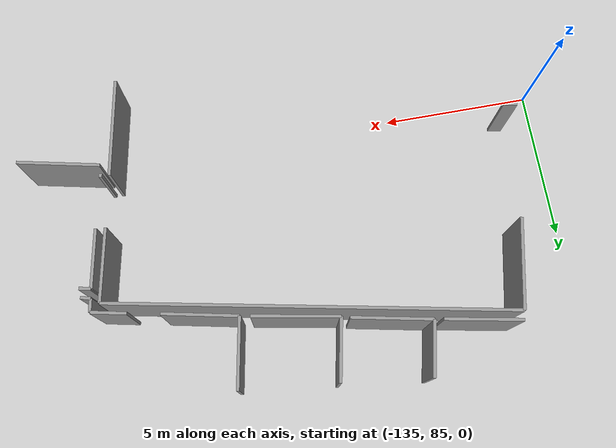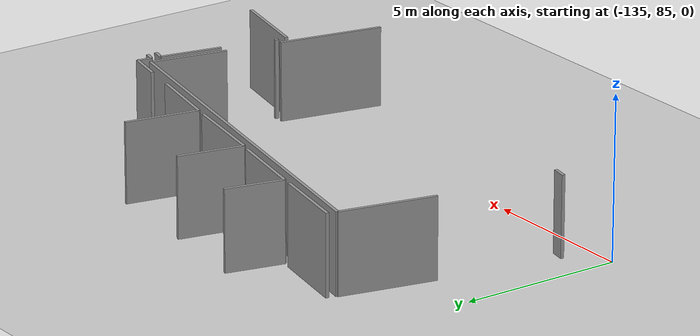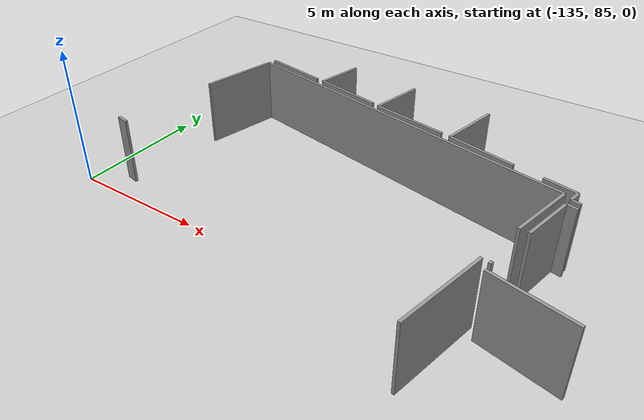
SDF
<sdf version="1.6">
 <world name="default">
  <model name="ground_plane">
   <static>1</static>
   <link name="link">
    <collision name="collision">
     <geometry><plane><normal>0 0 1</normal><size>100 100</size></plane></geometry>
     <surface><friction><ode><mu>100</mu><mu2>50</mu2></ode></friction></surface>
    </collision>
    <visual name="visual">
     <cast_shadows>0</cast_shadows>
     <geometry><plane><normal>0 0 1</normal><size>100 100</size></plane></geometry>
     <material>
      <script><uri>file://media/materials/scripts/gazebo.material</uri><name>Gazebo/Grey</name></script>
     </material>
    </visual>
   </link>
  </model>
  <model name="0510045926_A-40">
   <static>1</static>
   <link name="Wall_270">
    <collision name="Wall_270_Collision">
     <geometry><box><size>2.52131114552 0.1 2.5</size></box></geometry>
     <pose>1.26065557276 0 1.25 0 0 0</pose>
    </collision>
    <visual name="Wall_270_Visual">
     <pose>1.26065557276 0 1.25 0 0 0</pose>
     <geometry><box><size>2.52131114552 0.1 2.5</size></box></geometry>
     <material>
      <script><uri>file://media/materials/scripts/gazebo.material</uri><name>Gazebo/Grey</name></script>
      <ambient>1 1 1 1</ambient>
     </material>
    </visual>
    <pose>3.92027058756 -8.61163958041 0 0 0 2.9559905226</pose>
   </link>
   <link name="Wall_271">
    <collision name="Wall_271_Collision">
     <geometry><box><size>1.81140496301 0.1 2.5</size></box></geometry>
     <pose>0.905702481506 0 1.25 0 0 0</pose>
    </collision>
    <visual name="Wall_271_Visual">
     <pose>0.905702481506 0 1.25 0 0 0</pose>
     <geometry><box><size>1.81140496301 0.1 2.5</size></box></geometry>
     <material>
      <script><uri>file://media/materials/scripts/gazebo.material</uri><name>Gazebo/Grey</name></script>
      <ambient>1 1 1 1</ambient>
     </material>
    </visual>
    <pose>4.2007323125 -8.65276076734 0 0 0 1.35457448207</pose>
   </link>
   <link name="Wall_274">
    <collision name="Wall_274_Collision">
     <geometry><box><size>2.63147735025 0.1 2.5</size></box></geometry>
     <pose>1.31573867512 0 1.25 0 0 0</pose>
    </collision>
    <visual name="Wall_274_Visual">
     <pose>1.31573867512 0 1.25 0 0 0</pose>
     <geometry><box><size>2.63147735025 0.1 2.5</size></box></geometry>
     <material>
      <script><uri>file://media/materials/scripts/gazebo.material</uri><name>Gazebo/Grey</name></script>
      <ambient>1 1 1 1</ambient>
     </material>
    </visual>
    <pose>6.78172137858 -9.16576026602 0 0 0 2.9453888981</pose>
   </link>
   <link name="Wall_275">
    <collision name="Wall_275_Collision">
     <geometry><box><size>2.05003377799 0.1 2.5</size></box></geometry>
     <pose>1.02501688899 0 1.25 0 0 0</pose>
    </collision>
    <visual name="Wall_275_Visual">
     <pose>1.02501688899 0 1.25 0 0 0</pose>
     <geometry><box><size>2.05003377799 0.1 2.5</size></box></geometry>
     <material>
      <script><uri>file://media/materials/scripts/gazebo.material</uri><name>Gazebo/Grey</name></script>
      <ambient>1 1 1 1</ambient>
     </material>
    </visual>
    <pose>7.04773992118 -9.24774880539 0 0 0 1.37250229459</pose>
   </link>
   <link name="Wall_279">
    <collision name="Wall_279_Collision">
     <geometry><box><size>2.83246542109 0.1 2.5</size></box></geometry>
     <pose>1.41623271054 0 1.25 0 0 0</pose>
    </collision>
    <visual name="Wall_279_Visual">
     <pose>1.41623271054 0 1.25 0 0 0</pose>
     <geometry><box><size>2.83246542109 0.1 2.5</size></box></geometry>
     <material>
      <script><uri>file://media/materials/scripts/gazebo.material</uri><name>Gazebo/Grey</name></script>
      <ambient>1 1 1 1</ambient>
     </material>
    </visual>
    <pose>9.83535025986 -9.74983342112 0 0 0 2.96339034901</pose>
   </link>
   <link name="Wall_285">
    <collision name="Wall_285_Collision">
     <geometry><box><size>2.47284890426 0.1 2.5</size></box></geometry>
     <pose>1.23642445213 0 1.25 0 0 0</pose>
    </collision>
    <visual name="Wall_285_Visual">
     <pose>1.23642445213 0 1.25 0 0 0</pose>
     <geometry><box><size>2.47284890426 0.1 2.5</size></box></geometry>
     <material>
      <script><uri>file://media/materials/scripts/gazebo.material</uri><name>Gazebo/Grey</name></script>
      <ambient>1 1 1 1</ambient>
     </material>
    </visual>
    <pose>12.5914851221 -10.3110614724 0 0 0 2.93964746132</pose>
   </link>
   <link name="Wall_286">
    <collision name="Wall_286_Collision">
     <geometry><box><size>2.29845559755 0.1 2.5</size></box></geometry>
     <pose>1.14922779878 0 1.25 0 0 0</pose>
    </collision>
    <visual name="Wall_286_Visual">
     <pose>1.14922779878 0 1.25 0 0 0</pose>
     <geometry><box><size>2.29845559755 0.1 2.5</size></box></geometry>
     <material>
      <script><uri>file://media/materials/scripts/gazebo.material</uri><name>Gazebo/Grey</name></script>
      <ambient>1 1 1 1</ambient>
     </material>
    </visual>
    <pose>10.1688887761 -9.81506888433 0 0 0 1.38856227893</pose>
   </link>
   <link name="Wall_307">
    <collision name="Wall_307_Collision">
     <geometry><box><size>0.328887713749 0.1 2.5</size></box></geometry>
     <pose>0.164443856874 0 1.25 0 0 0</pose>
    </collision>
    <visual name="Wall_307_Visual">
     <pose>0.164443856874 0 1.25 0 0 0</pose>
     <geometry><box><size>0.328887713749 0.1 2.5</size></box></geometry>
     <material>
      <script><uri>file://media/materials/scripts/gazebo.material</uri><name>Gazebo/Grey</name></script>
      <ambient>1 1 1 1</ambient>
     </material>
    </visual>
    <pose>14.986921178 -11.2489799027 0 0 0 2.87527291338</pose>
   </link>
   <link name="Wall_308">
    <collision name="Wall_308_Collision">
     <geometry><box><size>0.432984868376 0.1 2.5</size></box></geometry>
     <pose>0.216492434188 0 1.25 0 0 0</pose>
    </collision>
    <visual name="Wall_308_Visual">
     <pose>0.216492434188 0 1.25 0 0 0</pose>
     <geometry><box><size>0.432984868376 0.1 2.5</size></box></geometry>
     <material>
      <script><uri>file://media/materials/scripts/gazebo.material</uri><name>Gazebo/Grey</name></script>
      <ambient>1 1 1 1</ambient>
     </material>
    </visual>
    <pose>14.669628069 -11.1624223425 0 0 0 1.38685287026</pose>
   </link>
   <link name="Wall_309">
    <collision name="Wall_309_Collision">
     <geometry><box><size>1.1633513692 0.1 2.5</size></box></geometry>
     <pose>0.5816756846 0 1.25 0 0 0</pose>
    </collision>
    <visual name="Wall_309_Visual">
     <pose>0.5816756846 0 1.25 0 0 0</pose>
     <geometry><box><size>1.1633513692 0.1 2.5</size></box></geometry>
     <material>
      <script><uri>file://media/materials/scripts/gazebo.material</uri><name>Gazebo/Grey</name></script>
      <ambient>1 1 1 1</ambient>
     </material>
    </visual>
    <pose>14.748824429 -10.7367419074 0 0 0 2.93859143548</pose>
   </link>
   <link name="Wall_316">
    <collision name="Wall_316_Collision">
     <geometry><box><size>13.2796130561 0.1 2.5</size></box></geometry>
     <pose>6.63980652807 0 1.25 0 0 0</pose>
    </collision>
    <visual name="Wall_316_Visual">
     <pose>6.63980652807 0 1.25 0 0 0</pose>
     <geometry><box><size>13.2796130561 0.1 2.5</size></box></geometry>
     <material>
      <script><uri>file://media/materials/scripts/gazebo.material</uri><name>Gazebo/Grey</name></script>
      <ambient>1 1 1 1</ambient>
     </material>
    </visual>
    <pose>1.37895585184 -8.43827062564 0 0 0 -0.191609062933</pose>
   </link>
   <link name="Wall_317">
    <collision name="Wall_317_Collision">
     <geometry><box><size>2.42817021013 0.1 2.5</size></box></geometry>
     <pose>1.21408510506 0 1.25 0 0 0</pose>
    </collision>
    <visual name="Wall_317_Visual">
     <pose>1.21408510506 0 1.25 0 0 0</pose>
     <geometry><box><size>2.42817021013 0.1 2.5</size></box></geometry>
     <material>
      <script><uri>file://media/materials/scripts/gazebo.material</uri><name>Gazebo/Grey</name></script>
      <ambient>1 1 1 1</ambient>
     </material>
    </visual>
    <pose>14.4155397473 -10.9672236218 0 0 0 -1.768827432</pose>
   </link>
   <link name="Wall_318">
    <collision name="Wall_318_Collision">
     <geometry><box><size>3.28017659082 0.1 2.5</size></box></geometry>
     <pose>1.64008829541 0 1.25 0 0 0</pose>
    </collision>
    <visual name="Wall_318_Visual">
     <pose>1.64008829541 0 1.25 0 0 0</pose>
     <geometry><box><size>3.28017659082 0.1 2.5</size></box></geometry>
     <material>
      <script><uri>file://media/materials/scripts/gazebo.material</uri><name>Gazebo/Grey</name></script>
      <ambient>1 1 1 1</ambient>
     </material>
    </visual>
    <pose>13.6060615676 -15.0656352525 0 0 0 -1.75705223089</pose>
   </link>
   <link name="Wall_326">
    <collision name="Wall_326_Collision">
     <geometry><box><size>0.462773172141 0.1 2.5</size></box></geometry>
     <pose>0.231386586071 0 1.25 0 0 0</pose>
    </collision>
    <visual name="Wall_326_Visual">
     <pose>0.231386586071 0 1.25 0 0 0</pose>
     <geometry><box><size>0.462773172141 0.1 2.5</size></box></geometry>
     <material>
      <script><uri>file://media/materials/scripts/gazebo.material</uri><name>Gazebo/Grey</name></script>
      <ambient>1 1 1 1</ambient>
     </material>
    </visual>
    <pose>0.454846017654 -15.2392580418 0 0 0 2.95623459523</pose>
   </link>
   <link name="Wall_327">
    <collision name="Wall_327_Collision">
     <geometry><box><size>2.9958898689 0.1 2.5</size></box></geometry>
     <pose>1.49794493445 0 1.25 0 0 0</pose>
    </collision>
    <visual name="Wall_327_Visual">
     <pose>1.49794493445 0 1.25 0 0 0</pose>
     <geometry><box><size>2.9958898689 0.1 2.5</size></box></geometry>
     <material>
      <script><uri>file://media/materials/scripts/gazebo.material</uri><name>Gazebo/Grey</name></script>
      <ambient>1 1 1 1</ambient>
     </material>
    </visual>
    <pose>0.764955610694 -11.370566622 0 0 0 1.36438622356</pose>
   </link>
   <link name="Wall_329">
    <collision name="Wall_329_Collision">
     <geometry><box><size>2.72572475506 0.1 2.5</size></box></geometry>
     <pose>1.36286237753 0 1.25 0 0 0</pose>
    </collision>
    <visual name="Wall_329_Visual">
     <pose>1.36286237753 0 1.25 0 0 0</pose>
     <geometry><box><size>2.72572475506 0.1 2.5</size></box></geometry>
     <material>
      <script><uri>file://media/materials/scripts/gazebo.material</uri><name>Gazebo/Grey</name></script>
      <ambient>1 1 1 1</ambient>
     </material>
    </visual>
    <pose>13.8644650755 -15.4618708871 0 0 0 -0.208335562826</pose>
   </link>
   <link name="Wall_352">
    <collision name="Wall_352_Collision">
     <geometry><box><size>0.385154000777 0.1 2.5</size></box></geometry>
     <pose>0.192577000388 0 1.25 0 0 0</pose>
    </collision>
    <visual name="Wall_352_Visual">
     <pose>0.192577000388 0 1.25 0 0 0</pose>
     <geometry><box><size>0.385154000777 0.1 2.5</size></box></geometry>
     <material>
      <script><uri>file://media/materials/scripts/gazebo.material</uri><name>Gazebo/Grey</name></script>
      <ambient>1 1 1 1</ambient>
     </material>
    </visual>
    <pose>14.6236840268 -11.4652468858 0 0 0 -0.213164676636</pose>
   </link>
   <link name="Wall_362">
    <collision name="Wall_362_Collision">
     <geometry><box><size>0.115717906122 0.1 2.5</size></box></geometry>
     <pose>0.0578589530608 0 1.25 0 0 0</pose>
    </collision>
    <visual name="Wall_362_Visual">
     <pose>0.0578589530608 0 1.25 0 0 0</pose>
     <geometry><box><size>0.115717906122 0.1 2.5</size></box></geometry>
     <material>
      <script><uri>file://media/materials/scripts/gazebo.material</uri><name>Gazebo/Grey</name></script>
      <ambient>1 1 1 1</ambient>
     </material>
    </visual>
    <pose>13.8708109377 -15.1671690474 0 0 0 1.35188945563</pose>
   </link>
   <link name="Wall_363">
    <collision name="Wall_363_Collision">
     <geometry><box><size>1.93690623874 0.1 2.5</size></box></geometry>
     <pose>0.968453119369 0 1.25 0 0 0</pose>
    </collision>
    <visual name="Wall_363_Visual">
     <pose>0.968453119369 0 1.25 0 0 0</pose>
     <geometry><box><size>1.93690623874 0.1 2.5</size></box></geometry>
     <material>
      <script><uri>file://media/materials/scripts/gazebo.material</uri><name>Gazebo/Grey</name></script>
      <ambient>1 1 1 1</ambient>
     </material>
    </visual>
    <pose>14.2535933445 -13.3664671951 0 0 0 1.37854105271</pose>
   </link>
   <pose>-133.95 101.113233661 0 0 0 0</pose>
  </model>
 </world>
</sdf>
